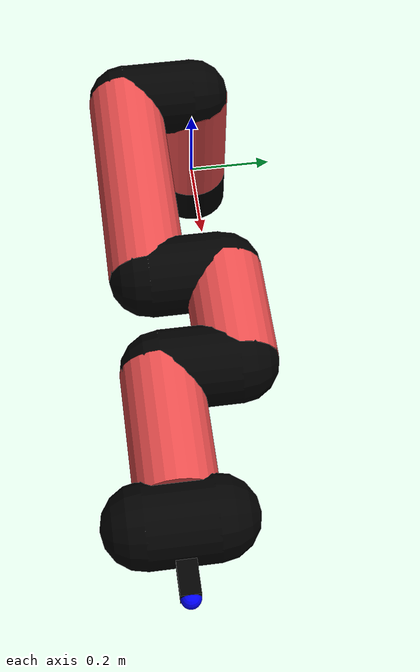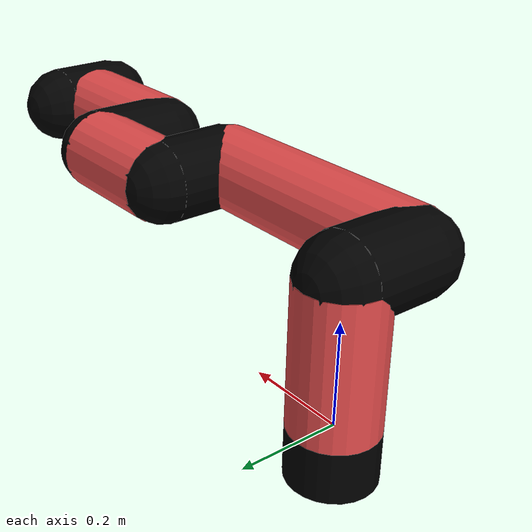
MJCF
<mujoco model="manipulator">
		<compiler angle="degree" coordinate="local" inertiafromgeom="auto" meshdir="meshes/"/>
		<option gravity="0 0 0" integrator="RK4" iterations="30" timestep="0.01"/>

		<default>
		<joint armature="1" limited="true" stiffness="10" damping="15" frictionloss="5.0"/>
		<geom conaffinity="1" condim="3" contype="1" friction=".5 .1 .1" margin="0.002"/>
		<motor ctrllimited="true"/>
		<position ctrllimited="true"/>
		</default>

		<asset>
		<texture builtin="gradient" height="100" rgb1="1.0 1.0 1.0" rgb2="1.0 1.0 1.0" type="skybox" width="100"/>
		<texture builtin="flat" height="32" name="arm_tex" rgb1="0.9 0.3 0.3" type="2d" width="32"/>
		<texture builtin="flat" height="32" name="gripper_tex" rgb1="0.0 0.0 0.0" type="cube" width="32"/>

		<material name="arm_mat" shininess="0.1" specular="0.1" texture="arm_tex"/>
		<material name="gripper_mat" shininess="1" specular="1" texture="gripper_tex"/>
		</asset>

		<worldbody>
		<light cutoff="45" diffuse=".8 .8 .8" dir="0 0.16 -1" directional="false" name="light" pos="0 -2.0 8.0" specular="0.3 0.3 0.3"/>

		<body name="base_link" pos="0 0 -0.1">
		<geom fromto="0 0 0 0 0 0.1" material="arm_mat" name="base_link" rgba="0.0 0.0 0.0 1" size="0.085" type="cylinder"/>
		</body>

		<body name="l1" pos="0 0 0">
<geom fromto="0 0 0 0 0 0.28" material="arm_mat" name="l1" rgba="0.9 0.3 0.3 1" size="0.085" type="cylinder"/>
<geom fromto="0 0 0.28 0 -0.16 0.28" material="arm_mat" name="l1_ex" rgba="0.0 0.0 0.0 1" size="0.085" type="capsule"/>
<joint axis="0 0 1" name="j1" pos="0 0 0" range="-90 90" damping="29.08" frictionloss="10.04"/>

<body name="l2" pos="0 -0.16 0.28">
<geom fromto="0 0 0 0.51 0 0" material="arm_mat" name="l2" rgba="0.9 0.3 0.3 1" size="0.085" type="cylinder"/>
<geom fromto="0.51 0 0 0.51 0.16 0" material="arm_mat" name="l2_ex" rgba="0.0 0.0 0.0 1" size="0.085" type="capsule"/>
<joint axis="0.09 0.86 -0.12" name="j2" pos="0 0 0" range="-90 60" damping="28.4" frictionloss="9.95"/>

<body name="l3" pos="0.51 0.16 0">
<geom fromto="0 0 0 0.23 0 0" material="arm_mat" name="l3" rgba="0.9 0.3 0.3 1" size="0.085" type="cylinder"/>
<geom fromto="0.23 0 0 0.23 -0.16 0" material="arm_mat" name="l3_ex" rgba="0.0 0.0 0.0 1" size="0.085" type="capsule"/>
<joint axis="-0.0 0.78 0.04" name="j3" pos="0 0 0" range="-30 60" damping="33.05" frictionloss="12.42"/>

<body name="l4" pos="0.23 -0.16 0">
<geom fromto="0 0 0 0.28 0 0" material="arm_mat" name="l4" rgba="0.9 0.3 0.3 1" size="0.085" type="cylinder"/>
<joint axis="-0.18 1.04 0.1" name="j4" pos="0 0 0" range="-30 60" damping="25.06" frictionloss="10.01"/>

<body name="gripper" pos="0.28 0 0">
<geom fromto="0.05 -0.07 0 0.05 0.07 0" material="gripper_mat" name="gripper" rgba="0.0 0.0 0.0 1" size="0.085" type="capsule"/><joint axis="1 0 0" name="j5" pos="0 0 0" range="-90 90" damping="15" frictionloss="5.0"/><body name="finger" pos="0.1 0 0">
<geom fromto="0 0.0 0 0.1 0.0 0" material="gripper_mat" name="finger" rgba="0.0 0.0 0.0 1" size="0.020 0.06 0.06" type="box"/>
</body>
<site name="current" pos="0.2 0. 0.0" rgba="0. 0. 1.0 1" size="0.02" type="sphere"/>
</body>
</body>
</body>
</body>
</body>
</worldbody>
<actuator>
<motor ctrllimited="true" ctrlrange="-1.0 1.0" joint="j1" gear="91.14"/>
<motor ctrllimited="true" ctrlrange="-1.0 1.0" joint="j2" gear="61.18"/>
<motor ctrllimited="true" ctrlrange="-1.0 1.0" joint="j3" gear="83.73"/>
<motor ctrllimited="true" ctrlrange="-1.0 1.0" joint="j4" gear="99.28"/>
<motor ctrllimited="true" ctrlrange="-1.0 1.0" joint="j5" gear="80"/>
</actuator>
</mujoco>
